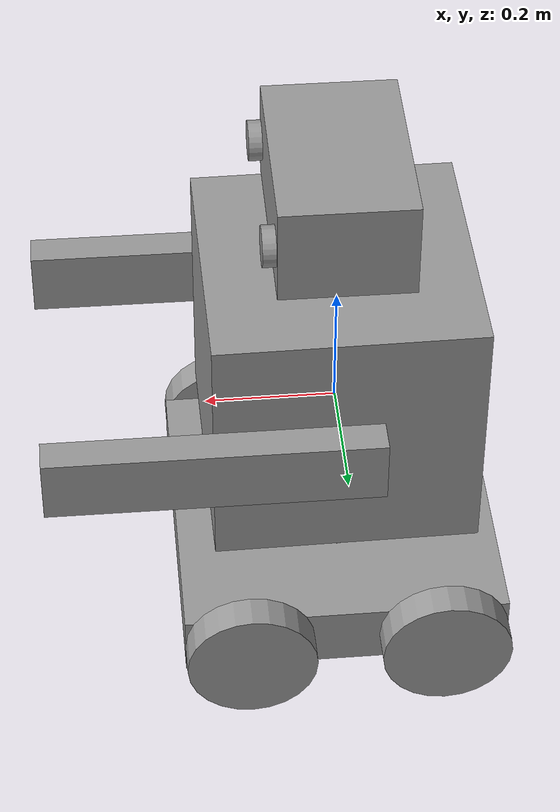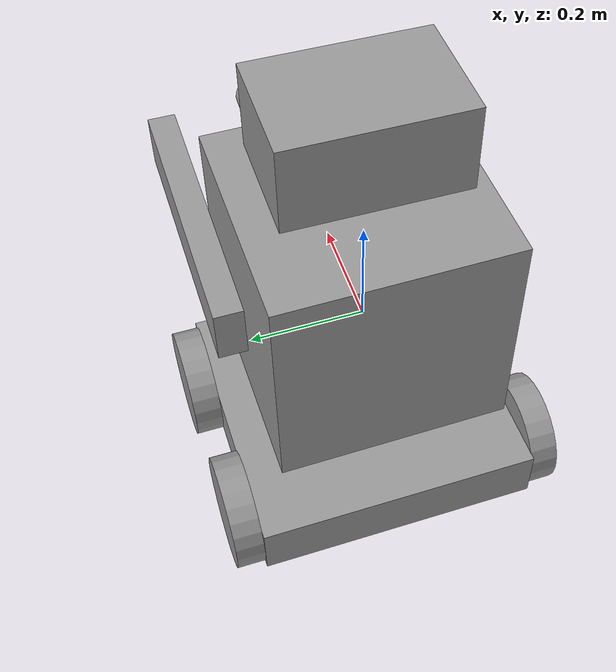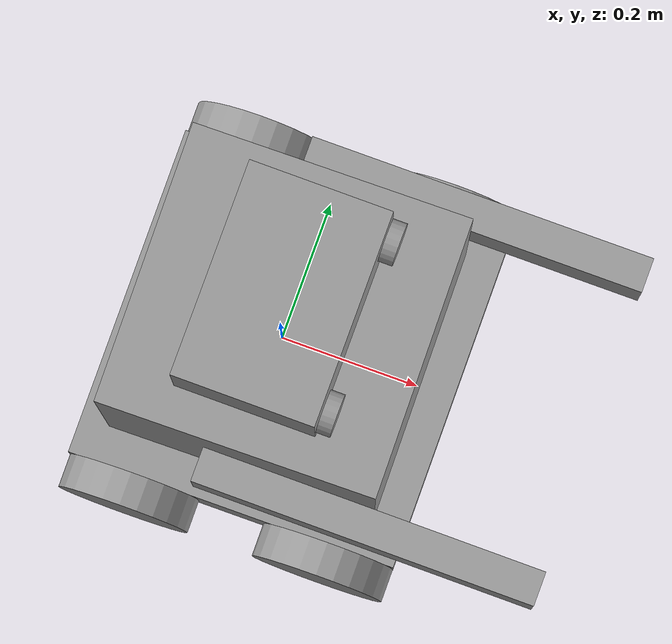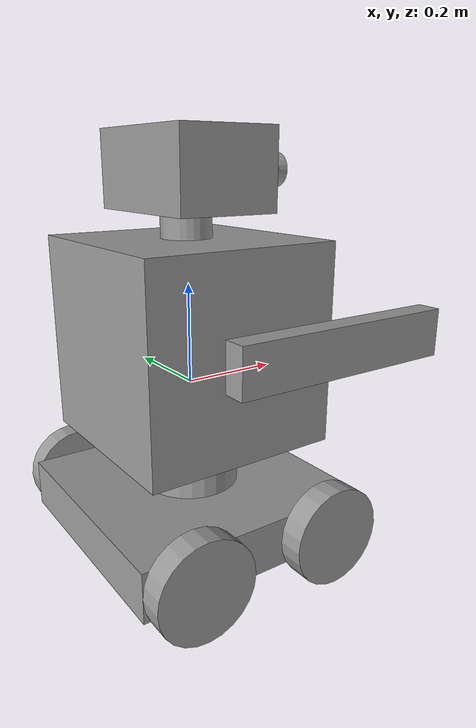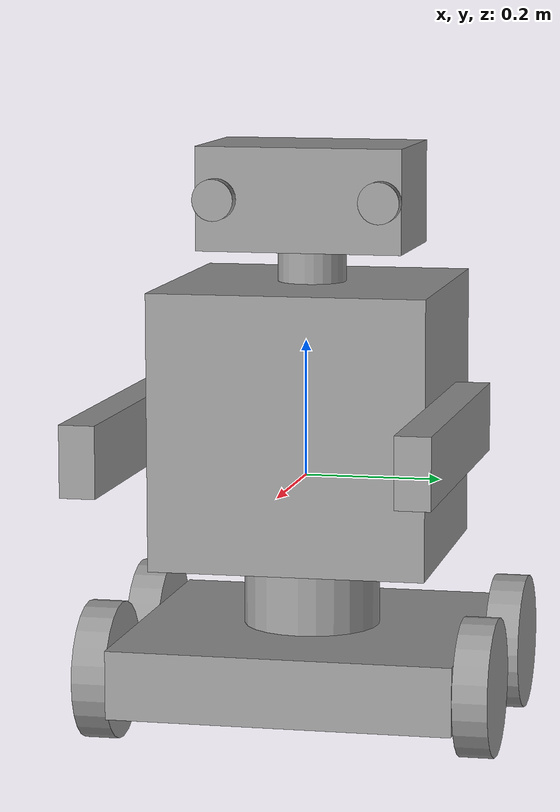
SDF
<?xml version='1.0'?>
<sdf version='1.6'>
  <model name='static_robot'>
    <link name='link_0'>
      <inertial>
        <mass>1</mass>
        <inertia>
          <ixx>0.166667</ixx>
          <ixy>0</ixy>
          <ixz>0</ixz>
          <iyy>0.166667</iyy>
          <iyz>0</iyz>
          <izz>0.166667</izz>
        </inertia>
        <pose frame=''>0 0 0 0 -0 0</pose>
      </inertial>
      <pose frame=''>0.002857 0.01 -0.27 0 -0 0</pose>
      <gravity>1</gravity>
      <self_collide>0</self_collide>
      <kinematic>0</kinematic>
      <enable_wind>0</enable_wind>
      <visual name='visual'>
        <pose frame=''>0 0 0 0 -0 0</pose>
        <geometry>
          <box>
            <size>0.5 0.5 0.1</size>
          </box>
        </geometry>
        <material>
          <lighting>1</lighting>
          <script>
            <uri>file://media/materials/scripts/gazebo.material</uri>
            <name>Gazebo/Grey</name>
          </script>
          <shader type='pixel'>
            <normal_map>__default__</normal_map>
          </shader>
          <ambient>0.3 0.3 0.3 1</ambient>
          <diffuse>0.7 0.7 0.7 1</diffuse>
          <specular>0.01 0.01 0.01 1</specular>
          <emissive>0 0 0 1</emissive>
        </material>
        <transparency>0</transparency>
        <cast_shadows>1</cast_shadows>
      </visual>
      <collision name='collision'>
        <laser_retro>0</laser_retro>
        <max_contacts>10</max_contacts>
        <pose frame=''>0 0 0 0 -0 0</pose>
        <geometry>
          <box>
            <size>0.5 0.5 0.1</size>
          </box>
        </geometry>
        <surface>
          <friction>
            <ode>
              <mu>1</mu>
              <mu2>1</mu2>
              <fdir1>0 0 0</fdir1>
              <slip1>0</slip1>
              <slip2>0</slip2>
            </ode>
            <torsional>
              <coefficient>1</coefficient>
              <patch_radius>0</patch_radius>
              <surface_radius>0</surface_radius>
              <use_patch_radius>1</use_patch_radius>
              <ode>
                <slip>0</slip>
              </ode>
            </torsional>
          </friction>
          <bounce>
            <restitution_coefficient>0</restitution_coefficient>
            <threshold>1e+06</threshold>
          </bounce>
          <contact>
            <collide_without_contact>0</collide_without_contact>
            <collide_without_contact_bitmask>1</collide_without_contact_bitmask>
            <collide_bitmask>1</collide_bitmask>
            <ode>
              <soft_cfm>0</soft_cfm>
              <soft_erp>0.2</soft_erp>
              <kp>1e+13</kp>
              <kd>1</kd>
              <max_vel>0.01</max_vel>
              <min_depth>0</min_depth>
            </ode>
            <bullet>
              <split_impulse>1</split_impulse>
              <split_impulse_penetration_threshold>-0.01</split_impulse_penetration_threshold>
              <soft_cfm>0</soft_cfm>
              <soft_erp>0.2</soft_erp>
              <kp>1e+13</kp>
              <kd>1</kd>
            </bullet>
          </contact>
        </surface>
      </collision>
    </link>
    <link name='link_0_0'>
      <inertial>
        <mass>1</mass>
        <inertia>
          <ixx>0.166667</ixx>
          <ixy>0</ixy>
          <ixz>0</ixz>
          <iyy>0.166667</iyy>
          <iyz>0</iyz>
          <izz>0.166667</izz>
        </inertia>
        <pose frame=''>0 0 0 0 -0 0</pose>
      </inertial>
      <pose frame=''>0.002855 0.009847 0.087784 0.000603 -1.2e-05 0.008466</pose>
      <gravity>1</gravity>
      <self_collide>0</self_collide>
      <kinematic>0</kinematic>
      <enable_wind>0</enable_wind>
      <visual name='visual'>
        <pose frame=''>0 0 0 0 -0 0</pose>
        <geometry>
          <box>
            <size>0.4 0.4 0.4</size>
          </box>
        </geometry>
        <material>
          <lighting>1</lighting>
          <script>
            <uri>file://media/materials/scripts/gazebo.material</uri>
            <name>Gazebo/Grey</name>
          </script>
          <shader type='pixel'>
            <normal_map>__default__</normal_map>
          </shader>
          <ambient>0.3 0.3 0.3 1</ambient>
          <diffuse>0.7 0.7 0.7 1</diffuse>
          <specular>0.01 0.01 0.01 1</specular>
          <emissive>0 0 0 1</emissive>
        </material>
        <transparency>0</transparency>
        <cast_shadows>1</cast_shadows>
      </visual>
      <collision name='collision'>
        <laser_retro>0</laser_retro>
        <max_contacts>10</max_contacts>
        <pose frame=''>0 0 0 0 -0 0</pose>
        <geometry>
          <box>
            <size>0.4 0.4 0.4</size>
          </box>
        </geometry>
        <surface>
          <friction>
            <ode>
              <mu>1</mu>
              <mu2>1</mu2>
              <fdir1>0 0 0</fdir1>
              <slip1>0</slip1>
              <slip2>0</slip2>
            </ode>
            <torsional>
              <coefficient>1</coefficient>
              <patch_radius>0</patch_radius>
              <surface_radius>0</surface_radius>
              <use_patch_radius>1</use_patch_radius>
              <ode>
                <slip>0</slip>
              </ode>
            </torsional>
          </friction>
          <bounce>
            <restitution_coefficient>0</restitution_coefficient>
            <threshold>1e+06</threshold>
          </bounce>
          <contact>
            <collide_without_contact>0</collide_without_contact>
            <collide_without_contact_bitmask>1</collide_without_contact_bitmask>
            <collide_bitmask>1</collide_bitmask>
            <ode>
              <soft_cfm>0</soft_cfm>
              <soft_erp>0.2</soft_erp>
              <kp>1e+13</kp>
              <kd>1</kd>
              <max_vel>0.01</max_vel>
              <min_depth>0</min_depth>
            </ode>
            <bullet>
              <split_impulse>1</split_impulse>
              <split_impulse_penetration_threshold>-0.01</split_impulse_penetration_threshold>
              <soft_cfm>0</soft_cfm>
              <soft_erp>0.2</soft_erp>
              <kp>1e+13</kp>
              <kd>1</kd>
            </bullet>
          </contact>
        </surface>
      </collision>
    </link>
    <link name='link_0_1_clone'>
      <inertial>
        <mass>1</mass>
        <inertia>
          <ixx>0.166667</ixx>
          <ixy>0</ixy>
          <ixz>0</ixz>
          <iyy>0.166667</iyy>
          <iyz>0</iyz>
          <izz>0.166667</izz>
        </inertia>
        <pose frame=''>0 0 0 0 -0 0</pose>
      </inertial>
      <pose frame=''>0.002853 0.009846 0.412906 4e-06 -1.2e-05 -0.006466</pose>
      <gravity>1</gravity>
      <self_collide>0</self_collide>
      <kinematic>0</kinematic>
      <enable_wind>0</enable_wind>
      <visual name='visual_0'>
        <pose frame=''>0 0 0 0 -0 0</pose>
        <geometry>
          <box>
            <size>0.2 0.3 0.15</size>
          </box>
        </geometry>
        <material>
          <lighting>1</lighting>
          <script>
            <uri>file://media/materials/scripts/gazebo.material</uri>
            <name>Gazebo/Grey</name>
          </script>
          <shader type='pixel'>
            <normal_map>__default__</normal_map>
          </shader>
          <ambient>0.3 0.3 0.3 1</ambient>
          <diffuse>0.7 0.7 0.7 1</diffuse>
          <specular>0.01 0.01 0.01 1</specular>
          <emissive>0 0 0 1</emissive>
        </material>
        <transparency>0</transparency>
        <cast_shadows>1</cast_shadows>
      </visual>
      <collision name='collision'>
        <laser_retro>0</laser_retro>
        <max_contacts>10</max_contacts>
        <pose frame=''>0 0 0 0 -0 0</pose>
        <geometry>
          <box>
            <size>0.2 0.3 0.15</size>
          </box>
        </geometry>
        <surface>
          <friction>
            <ode>
              <mu>1</mu>
              <mu2>1</mu2>
              <fdir1>0 0 0</fdir1>
              <slip1>0</slip1>
              <slip2>0</slip2>
            </ode>
            <torsional>
              <coefficient>1</coefficient>
              <patch_radius>0</patch_radius>
              <surface_radius>0</surface_radius>
              <use_patch_radius>1</use_patch_radius>
              <ode>
                <slip>0</slip>
              </ode>
            </torsional>
          </friction>
          <bounce>
            <restitution_coefficient>0</restitution_coefficient>
            <threshold>1e+06</threshold>
          </bounce>
          <contact>
            <collide_without_contact>0</collide_without_contact>
            <collide_without_contact_bitmask>1</collide_without_contact_bitmask>
            <collide_bitmask>1</collide_bitmask>
            <ode>
              <soft_cfm>0</soft_cfm>
              <soft_erp>0.2</soft_erp>
              <kp>1e+13</kp>
              <kd>1</kd>
              <max_vel>0.01</max_vel>
              <min_depth>0</min_depth>
            </ode>
            <bullet>
              <split_impulse>1</split_impulse>
              <split_impulse_penetration_threshold>-0.01</split_impulse_penetration_threshold>
              <soft_cfm>0</soft_cfm>
              <soft_erp>0.2</soft_erp>
              <kp>1e+13</kp>
              <kd>1</kd>
            </bullet>
          </contact>
        </surface>
      </collision>
    </link>
    <link name='link_1_clone'>
      <inertial>
        <mass>1</mass>
        <inertia>
          <ixx>0.145833</ixx>
          <ixy>0</ixy>
          <ixz>0</ixz>
          <iyy>0.145833</iyy>
          <iyz>0</iyz>
          <izz>0.125</izz>
        </inertia>
        <pose frame=''>0 0 0 0 -0 0</pose>
      </inertial>
      <pose frame=''>-0.147143 0.28508 -0.27004 0 -0 0</pose>
      <gravity>1</gravity>
      <self_collide>0</self_collide>
      <kinematic>0</kinematic>
      <enable_wind>0</enable_wind>
      <visual name='visual'>
        <pose frame=''>0 0 0 1.57 -0 0</pose>
        <geometry>
          <cylinder>
            <radius>0.1</radius>
            <length>0.05</length>
          </cylinder>
        </geometry>
        <material>
          <lighting>1</lighting>
          <script>
            <uri>file://media/materials/scripts/gazebo.material</uri>
            <name>Gazebo/Grey</name>
          </script>
          <shader type='pixel'>
            <normal_map>__default__</normal_map>
          </shader>
          <ambient>0.3 0.3 0.3 1</ambient>
          <diffuse>0.7 0.7 0.7 1</diffuse>
          <specular>0.01 0.01 0.01 1</specular>
          <emissive>0 0 0 1</emissive>
        </material>
        <transparency>0</transparency>
        <cast_shadows>1</cast_shadows>
      </visual>
      <collision name='collision'>
        <laser_retro>0</laser_retro>
        <max_contacts>10</max_contacts>
        <pose frame=''>0 0 0 1.57 -0 0</pose>
        <geometry>
          <cylinder>
            <radius>0.1</radius>
            <length>0.05</length>
          </cylinder>
        </geometry>
        <surface>
          <friction>
            <ode>
              <mu>1</mu>
              <mu2>1</mu2>
              <fdir1>0 0 0</fdir1>
              <slip1>0</slip1>
              <slip2>0</slip2>
            </ode>
            <torsional>
              <coefficient>1</coefficient>
              <patch_radius>0</patch_radius>
              <surface_radius>0</surface_radius>
              <use_patch_radius>1</use_patch_radius>
              <ode>
                <slip>0</slip>
              </ode>
            </torsional>
          </friction>
          <bounce>
            <restitution_coefficient>0</restitution_coefficient>
            <threshold>1e+06</threshold>
          </bounce>
          <contact>
            <collide_without_contact>0</collide_without_contact>
            <collide_without_contact_bitmask>1</collide_without_contact_bitmask>
            <collide_bitmask>1</collide_bitmask>
            <ode>
              <soft_cfm>0</soft_cfm>
              <soft_erp>0.2</soft_erp>
              <kp>1e+13</kp>
              <kd>1</kd>
              <max_vel>0.01</max_vel>
              <min_depth>0</min_depth>
            </ode>
            <bullet>
              <split_impulse>1</split_impulse>
              <split_impulse_penetration_threshold>-0.01</split_impulse_penetration_threshold>
              <soft_cfm>0</soft_cfm>
              <soft_erp>0.2</soft_erp>
              <kp>1e+13</kp>
              <kd>1</kd>
            </bullet>
          </contact>
        </surface>
      </collision>
    </link>
    <link name='link_1_clone_clone_0'>
      <inertial>
        <mass>1</mass>
        <inertia>
          <ixx>0.145833</ixx>
          <ixy>0</ixy>
          <ixz>0</ixz>
          <iyy>0.145833</iyy>
          <iyz>0</iyz>
          <izz>0.125</izz>
        </inertia>
        <pose frame=''>0 0 0 0 -0 0</pose>
      </inertial>
      <pose frame=''>0.152857 -0.26508 -0.27004 0 -0 0</pose>
      <gravity>1</gravity>
      <self_collide>0</self_collide>
      <kinematic>0</kinematic>
      <enable_wind>0</enable_wind>
      <visual name='visual'>
        <pose frame=''>0 0 0 1.57 -0 0</pose>
        <geometry>
          <cylinder>
            <radius>0.1</radius>
            <length>0.05</length>
          </cylinder>
        </geometry>
        <material>
          <lighting>1</lighting>
          <script>
            <uri>file://media/materials/scripts/gazebo.material</uri>
            <name>Gazebo/Grey</name>
          </script>
          <shader type='pixel'>
            <normal_map>__default__</normal_map>
          </shader>
          <ambient>0.3 0.3 0.3 1</ambient>
          <diffuse>0.7 0.7 0.7 1</diffuse>
          <specular>0.01 0.01 0.01 1</specular>
          <emissive>0 0 0 1</emissive>
        </material>
        <transparency>0</transparency>
        <cast_shadows>1</cast_shadows>
      </visual>
      <collision name='collision'>
        <laser_retro>0</laser_retro>
        <max_contacts>10</max_contacts>
        <pose frame=''>0 0 0 1.57 -0 0</pose>
        <geometry>
          <cylinder>
            <radius>0.1</radius>
            <length>0.05</length>
          </cylinder>
        </geometry>
        <surface>
          <friction>
            <ode>
              <mu>1</mu>
              <mu2>1</mu2>
              <fdir1>0 0 0</fdir1>
              <slip1>0</slip1>
              <slip2>0</slip2>
            </ode>
            <torsional>
              <coefficient>1</coefficient>
              <patch_radius>0</patch_radius>
              <surface_radius>0</surface_radius>
              <use_patch_radius>1</use_patch_radius>
              <ode>
                <slip>0</slip>
              </ode>
            </torsional>
          </friction>
          <bounce>
            <restitution_coefficient>0</restitution_coefficient>
            <threshold>1e+06</threshold>
          </bounce>
          <contact>
            <collide_without_contact>0</collide_without_contact>
            <collide_without_contact_bitmask>1</collide_without_contact_bitmask>
            <collide_bitmask>1</collide_bitmask>
            <ode>
              <soft_cfm>0</soft_cfm>
              <soft_erp>0.2</soft_erp>
              <kp>1e+13</kp>
              <kd>1</kd>
              <max_vel>0.01</max_vel>
              <min_depth>0</min_depth>
            </ode>
            <bullet>
              <split_impulse>1</split_impulse>
              <split_impulse_penetration_threshold>-0.01</split_impulse_penetration_threshold>
              <soft_cfm>0</soft_cfm>
              <soft_erp>0.2</soft_erp>
              <kp>1e+13</kp>
              <kd>1</kd>
            </bullet>
          </contact>
        </surface>
      </collision>
    </link>
    <link name='link_1_clone_clone_1'>
      <inertial>
        <mass>1</mass>
        <inertia>
          <ixx>0.145833</ixx>
          <ixy>0</ixy>
          <ixz>0</ixz>
          <iyy>0.145833</iyy>
          <iyz>0</iyz>
          <izz>0.125</izz>
        </inertia>
        <pose frame=''>0 0 0 0 -0 0</pose>
      </inertial>
      <pose frame=''>-0.147143 -0.26508 -0.27004 0 -0 0</pose>
      <gravity>1</gravity>
      <self_collide>0</self_collide>
      <kinematic>0</kinematic>
      <enable_wind>0</enable_wind>
      <visual name='visual'>
        <pose frame=''>0 0 0 1.57 -0 0</pose>
        <geometry>
          <cylinder>
            <radius>0.1</radius>
            <length>0.05</length>
          </cylinder>
        </geometry>
        <material>
          <lighting>1</lighting>
          <script>
            <uri>file://media/materials/scripts/gazebo.material</uri>
            <name>Gazebo/Grey</name>
          </script>
          <shader type='pixel'>
            <normal_map>__default__</normal_map>
          </shader>
          <ambient>0.3 0.3 0.3 1</ambient>
          <diffuse>0.7 0.7 0.7 1</diffuse>
          <specular>0.01 0.01 0.01 1</specular>
          <emissive>0 0 0 1</emissive>
        </material>
        <transparency>0</transparency>
        <cast_shadows>1</cast_shadows>
      </visual>
      <collision name='collision'>
        <laser_retro>0</laser_retro>
        <max_contacts>10</max_contacts>
        <pose frame=''>0 0 0 1.57 -0 0</pose>
        <geometry>
          <cylinder>
            <radius>0.1</radius>
            <length>0.05</length>
          </cylinder>
        </geometry>
        <surface>
          <friction>
            <ode>
              <mu>1</mu>
              <mu2>1</mu2>
              <fdir1>0 0 0</fdir1>
              <slip1>0</slip1>
              <slip2>0</slip2>
            </ode>
            <torsional>
              <coefficient>1</coefficient>
              <patch_radius>0</patch_radius>
              <surface_radius>0</surface_radius>
              <use_patch_radius>1</use_patch_radius>
              <ode>
                <slip>0</slip>
              </ode>
            </torsional>
          </friction>
          <bounce>
            <restitution_coefficient>0</restitution_coefficient>
            <threshold>1e+06</threshold>
          </bounce>
          <contact>
            <collide_without_contact>0</collide_without_contact>
            <collide_without_contact_bitmask>1</collide_without_contact_bitmask>
            <collide_bitmask>1</collide_bitmask>
            <ode>
              <soft_cfm>0</soft_cfm>
              <soft_erp>0.2</soft_erp>
              <kp>1e+13</kp>
              <kd>1</kd>
              <max_vel>0.01</max_vel>
              <min_depth>0</min_depth>
            </ode>
            <bullet>
              <split_impulse>1</split_impulse>
              <split_impulse_penetration_threshold>-0.01</split_impulse_penetration_threshold>
              <soft_cfm>0</soft_cfm>
              <soft_erp>0.2</soft_erp>
              <kp>1e+13</kp>
              <kd>1</kd>
            </bullet>
          </contact>
        </surface>
      </collision>
    </link>
    <link name='link_1_clone_clone_2'>
      <inertial>
        <mass>1</mass>
        <inertia>
          <ixx>0.145833</ixx>
          <ixy>0</ixy>
          <ixz>0</ixz>
          <iyy>0.145833</iyy>
          <iyz>0</iyz>
          <izz>0.125</izz>
        </inertia>
        <pose frame=''>0 0 0 0 -0 0</pose>
      </inertial>
      <pose frame=''>0.152857 0.28508 -0.27004 0 -0 0</pose>
      <gravity>1</gravity>
      <self_collide>0</self_collide>
      <kinematic>0</kinematic>
      <enable_wind>0</enable_wind>
      <visual name='visual'>
        <pose frame=''>0 0 0 1.57 -0 0</pose>
        <geometry>
          <cylinder>
            <radius>0.1</radius>
            <length>0.05</length>
          </cylinder>
        </geometry>
        <material>
          <lighting>1</lighting>
          <script>
            <uri>file://media/materials/scripts/gazebo.material</uri>
            <name>Gazebo/Grey</name>
          </script>
          <shader type='pixel'>
            <normal_map>__default__</normal_map>
          </shader>
          <ambient>0.3 0.3 0.3 1</ambient>
          <diffuse>0.7 0.7 0.7 1</diffuse>
          <specular>0.01 0.01 0.01 1</specular>
          <emissive>0 0 0 1</emissive>
        </material>
        <transparency>0</transparency>
        <cast_shadows>1</cast_shadows>
      </visual>
      <collision name='collision'>
        <laser_retro>0</laser_retro>
        <max_contacts>10</max_contacts>
        <pose frame=''>0 0 0 1.57 -0 0</pose>
        <geometry>
          <cylinder>
            <radius>0.1</radius>
            <length>0.05</length>
          </cylinder>
        </geometry>
        <surface>
          <friction>
            <ode>
              <mu>1</mu>
              <mu2>1</mu2>
              <fdir1>0 0 0</fdir1>
              <slip1>0</slip1>
              <slip2>0</slip2>
            </ode>
            <torsional>
              <coefficient>1</coefficient>
              <patch_radius>0</patch_radius>
              <surface_radius>0</surface_radius>
              <use_patch_radius>1</use_patch_radius>
              <ode>
                <slip>0</slip>
              </ode>
            </torsional>
          </friction>
          <bounce>
            <restitution_coefficient>0</restitution_coefficient>
            <threshold>1e+06</threshold>
          </bounce>
          <contact>
            <collide_without_contact>0</collide_without_contact>
            <collide_without_contact_bitmask>1</collide_without_contact_bitmask>
            <collide_bitmask>1</collide_bitmask>
            <ode>
              <soft_cfm>0</soft_cfm>
              <soft_erp>0.2</soft_erp>
              <kp>1e+13</kp>
              <kd>1</kd>
              <max_vel>0.01</max_vel>
              <min_depth>0</min_depth>
            </ode>
            <bullet>
              <split_impulse>1</split_impulse>
              <split_impulse_penetration_threshold>-0.01</split_impulse_penetration_threshold>
              <soft_cfm>0</soft_cfm>
              <soft_erp>0.2</soft_erp>
              <kp>1e+13</kp>
              <kd>1</kd>
            </bullet>
          </contact>
        </surface>
      </collision>
    </link>
    <link name='link_2_clone_clone_0_clone'>
      <inertial>
        <mass>1</mass>
        <inertia>
          <ixx>0.166667</ixx>
          <ixy>0</ixy>
          <ixz>0</ixz>
          <iyy>0.166667</iyy>
          <iyz>0</iyz>
          <izz>0.166667</izz>
        </inertia>
        <pose frame=''>0 0 0 0 -0 0</pose>
      </inertial>
      <pose frame=''>0.200922 0.238963 0.087787 2e-06 -6e-06 -0.003233</pose>
      <gravity>1</gravity>
      <self_collide>0</self_collide>
      <kinematic>0</kinematic>
      <enable_wind>0</enable_wind>
      <visual name='visual'>
        <pose frame=''>0 0 0 0 1.57 0</pose>
        <geometry>
          <box>
            <size>0.1 0.05 0.5</size>
          </box>
        </geometry>
        <material>
          <lighting>1</lighting>
          <script>
            <uri>file://media/materials/scripts/gazebo.material</uri>
            <name>Gazebo/Grey</name>
          </script>
          <shader type='pixel'>
            <normal_map>__default__</normal_map>
          </shader>
          <ambient>0.3 0.3 0.3 1</ambient>
          <diffuse>0.7 0.7 0.7 1</diffuse>
          <specular>0.01 0.01 0.01 1</specular>
          <emissive>0 0 0 1</emissive>
        </material>
        <transparency>0</transparency>
        <cast_shadows>1</cast_shadows>
      </visual>
      <collision name='collision'>
        <laser_retro>0</laser_retro>
        <max_contacts>10</max_contacts>
        <pose frame=''>0 0 0 0 1.57 0</pose>
        <geometry>
          <box>
            <size>0.1 0.05 0.5</size>
          </box>
        </geometry>
        <surface>
          <friction>
            <ode>
              <mu>1</mu>
              <mu2>1</mu2>
              <fdir1>0 0 0</fdir1>
              <slip1>0</slip1>
              <slip2>0</slip2>
            </ode>
            <torsional>
              <coefficient>1</coefficient>
              <patch_radius>0</patch_radius>
              <surface_radius>0</surface_radius>
              <use_patch_radius>1</use_patch_radius>
              <ode>
                <slip>0</slip>
              </ode>
            </torsional>
          </friction>
          <bounce>
            <restitution_coefficient>0</restitution_coefficient>
            <threshold>1e+06</threshold>
          </bounce>
          <contact>
            <collide_without_contact>0</collide_without_contact>
            <collide_without_contact_bitmask>1</collide_without_contact_bitmask>
            <collide_bitmask>1</collide_bitmask>
            <ode>
              <soft_cfm>0</soft_cfm>
              <soft_erp>0.2</soft_erp>
              <kp>1e+13</kp>
              <kd>1</kd>
              <max_vel>0.01</max_vel>
              <min_depth>0</min_depth>
            </ode>
            <bullet>
              <split_impulse>1</split_impulse>
              <split_impulse_penetration_threshold>-0.01</split_impulse_penetration_threshold>
              <soft_cfm>0</soft_cfm>
              <soft_erp>0.2</soft_erp>
              <kp>1e+13</kp>
              <kd>1</kd>
            </bullet>
          </contact>
        </surface>
      </collision>
    </link>
    <link name='link_2_clone_clone_0_clone_clone'>
      <inertial>
        <mass>1</mass>
        <inertia>
          <ixx>0.166667</ixx>
          <ixy>0</ixy>
          <ixz>0</ixz>
          <iyy>0.166667</iyy>
          <iyz>0</iyz>
          <izz>0.166667</izz>
        </inertia>
        <pose frame=''>0 0 0 0 -0 0</pose>
      </inertial>
      <pose frame=''>0.204785 -0.21725 0.087785 4e-06 -1.2e-05 -0.006466</pose>
      <gravity>1</gravity>
      <self_collide>0</self_collide>
      <kinematic>0</kinematic>
      <enable_wind>0</enable_wind>
      <visual name='visual'>
        <pose frame=''>0 0 0 0 1.57 0</pose>
        <geometry>
          <box>
            <size>0.1 0.05 0.5</size>
          </box>
        </geometry>
        <material>
          <lighting>1</lighting>
          <script>
            <uri>file://media/materials/scripts/gazebo.material</uri>
            <name>Gazebo/Grey</name>
          </script>
          <shader type='pixel'>
            <normal_map>__default__</normal_map>
          </shader>
          <ambient>0.3 0.3 0.3 1</ambient>
          <diffuse>0.7 0.7 0.7 1</diffuse>
          <specular>0.01 0.01 0.01 1</specular>
          <emissive>0 0 0 1</emissive>
        </material>
        <transparency>0</transparency>
        <cast_shadows>1</cast_shadows>
      </visual>
      <collision name='collision'>
        <laser_retro>0</laser_retro>
        <max_contacts>10</max_contacts>
        <pose frame=''>0 0 0 0 1.57 0</pose>
        <geometry>
          <box>
            <size>0.1 0.05 0.5</size>
          </box>
        </geometry>
        <surface>
          <friction>
            <ode>
              <mu>1</mu>
              <mu2>1</mu2>
              <fdir1>0 0 0</fdir1>
              <slip1>0</slip1>
              <slip2>0</slip2>
            </ode>
            <torsional>
              <coefficient>1</coefficient>
              <patch_radius>0</patch_radius>
              <surface_radius>0</surface_radius>
              <use_patch_radius>1</use_patch_radius>
              <ode>
                <slip>0</slip>
              </ode>
            </torsional>
          </friction>
          <bounce>
            <restitution_coefficient>0</restitution_coefficient>
            <threshold>1e+06</threshold>
          </bounce>
          <contact>
            <collide_without_contact>0</collide_without_contact>
            <collide_without_contact_bitmask>1</collide_without_contact_bitmask>
            <collide_bitmask>1</collide_bitmask>
            <ode>
              <soft_cfm>0</soft_cfm>
              <soft_erp>0.2</soft_erp>
              <kp>1e+13</kp>
              <kd>1</kd>
              <max_vel>0.01</max_vel>
              <min_depth>0</min_depth>
            </ode>
            <bullet>
              <split_impulse>1</split_impulse>
              <split_impulse_penetration_threshold>-0.01</split_impulse_penetration_threshold>
              <soft_cfm>0</soft_cfm>
              <soft_erp>0.2</soft_erp>
              <kp>1e+13</kp>
              <kd>1</kd>
            </bullet>
          </contact>
        </surface>
      </collision>
    </link>
    <link name='link_3_clone'>
      <inertial>
        <mass>1</mass>
        <inertia>
          <ixx>0.145833</ixx>
          <ixy>0</ixy>
          <ixz>0</ixz>
          <iyy>0.145833</iyy>
          <iyz>0</iyz>
          <izz>0.125</izz>
        </inertia>
        <pose frame=''>0 0 2 0 -0 0</pose>
      </inertial>
      <pose frame=''>0.002857 0.01 -0.17 0 -0 0</pose>
      <gravity>1</gravity>
      <self_collide>0</self_collide>
      <kinematic>0</kinematic>
      <enable_wind>0</enable_wind>
      <visual name='visual'>
        <pose frame=''>0 0 0 0 -0 0</pose>
        <geometry>
          <cylinder>
            <radius>0.1</radius>
            <length>0.1</length>
          </cylinder>
        </geometry>
        <material>
          <lighting>1</lighting>
          <script>
            <uri>file://media/materials/scripts/gazebo.material</uri>
            <name>Gazebo/Grey</name>
          </script>
          <shader type='pixel'>
            <normal_map>__default__</normal_map>
          </shader>
          <ambient>0.3 0.3 0.3 1</ambient>
          <diffuse>0.7 0.7 0.7 1</diffuse>
          <specular>0.01 0.01 0.01 1</specular>
          <emissive>0 0 0 1</emissive>
        </material>
        <transparency>0</transparency>
        <cast_shadows>1</cast_shadows>
      </visual>
      <collision name='collision'>
        <laser_retro>0</laser_retro>
        <max_contacts>10</max_contacts>
        <pose frame=''>0 0 0 0 -0 0</pose>
        <geometry>
          <cylinder>
            <radius>0.1</radius>
            <length>0.1</length>
          </cylinder>
        </geometry>
        <surface>
          <friction>
            <ode>
              <mu>1</mu>
              <mu2>1</mu2>
              <fdir1>0 0 0</fdir1>
              <slip1>0</slip1>
              <slip2>0</slip2>
            </ode>
            <torsional>
              <coefficient>1</coefficient>
              <patch_radius>0</patch_radius>
              <surface_radius>0</surface_radius>
              <use_patch_radius>1</use_patch_radius>
              <ode>
                <slip>0</slip>
              </ode>
            </torsional>
          </friction>
          <bounce>
            <restitution_coefficient>0</restitution_coefficient>
            <threshold>1e+06</threshold>
          </bounce>
          <contact>
            <collide_without_contact>0</collide_without_contact>
            <collide_without_contact_bitmask>1</collide_without_contact_bitmask>
            <collide_bitmask>1</collide_bitmask>
            <ode>
              <soft_cfm>0</soft_cfm>
              <soft_erp>0.2</soft_erp>
              <kp>1e+13</kp>
              <kd>1</kd>
              <max_vel>0.01</max_vel>
              <min_depth>0</min_depth>
            </ode>
            <bullet>
              <split_impulse>1</split_impulse>
              <split_impulse_penetration_threshold>-0.01</split_impulse_penetration_threshold>
              <soft_cfm>0</soft_cfm>
              <soft_erp>0.2</soft_erp>
              <kp>1e+13</kp>
              <kd>1</kd>
            </bullet>
          </contact>
        </surface>
      </collision>
    </link>
    <link name='link_3_clone_clone'>
      <inertial>
        <mass>1</mass>
        <inertia>
          <ixx>0.145833</ixx>
          <ixy>0</ixy>
          <ixz>0</ixz>
          <iyy>0.145833</iyy>
          <iyz>0</iyz>
          <izz>0.125</izz>
        </inertia>
        <pose frame=''>0 0 2 0 -0 0</pose>
      </inertial>
      <pose frame=''>0.002854 0.009847 0.312905 2e-06 -6e-06 -0.003233</pose>
      <gravity>1</gravity>
      <self_collide>0</self_collide>
      <kinematic>0</kinematic>
      <enable_wind>0</enable_wind>
      <visual name='visual'>
        <pose frame=''>0 0 0 0 -0 0</pose>
        <geometry>
          <cylinder>
            <radius>0.05</radius>
            <length>0.05</length>
          </cylinder>
        </geometry>
        <material>
          <lighting>1</lighting>
          <script>
            <uri>file://media/materials/scripts/gazebo.material</uri>
            <name>Gazebo/Grey</name>
          </script>
          <shader type='pixel'>
            <normal_map>__default__</normal_map>
          </shader>
          <ambient>0.3 0.3 0.3 1</ambient>
          <diffuse>0.7 0.7 0.7 1</diffuse>
          <specular>0.01 0.01 0.01 1</specular>
          <emissive>0 0 0 1</emissive>
        </material>
        <transparency>0</transparency>
        <cast_shadows>1</cast_shadows>
      </visual>
      <collision name='collision'>
        <laser_retro>0</laser_retro>
        <max_contacts>10</max_contacts>
        <pose frame=''>0 0 0 0 -0 0</pose>
        <geometry>
          <cylinder>
            <radius>0.05</radius>
            <length>0.05</length>
          </cylinder>
        </geometry>
        <surface>
          <friction>
            <ode>
              <mu>1</mu>
              <mu2>1</mu2>
              <fdir1>0 0 0</fdir1>
              <slip1>0</slip1>
              <slip2>0</slip2>
            </ode>
            <torsional>
              <coefficient>1</coefficient>
              <patch_radius>0</patch_radius>
              <surface_radius>0</surface_radius>
              <use_patch_radius>1</use_patch_radius>
              <ode>
                <slip>0</slip>
              </ode>
            </torsional>
          </friction>
          <bounce>
            <restitution_coefficient>0</restitution_coefficient>
            <threshold>1e+06</threshold>
          </bounce>
          <contact>
            <collide_without_contact>0</collide_without_contact>
            <collide_without_contact_bitmask>1</collide_without_contact_bitmask>
            <collide_bitmask>1</collide_bitmask>
            <ode>
              <soft_cfm>0</soft_cfm>
              <soft_erp>0.2</soft_erp>
              <kp>1e+13</kp>
              <kd>1</kd>
              <max_vel>0.01</max_vel>
              <min_depth>0</min_depth>
            </ode>
            <bullet>
              <split_impulse>1</split_impulse>
              <split_impulse_penetration_threshold>-0.01</split_impulse_penetration_threshold>
              <soft_cfm>0</soft_cfm>
              <soft_erp>0.2</soft_erp>
              <kp>1e+13</kp>
              <kd>1</kd>
            </bullet>
          </contact>
        </surface>
      </collision>
    </link>
    <link name='link_3_clone_clone_clone'>
      <inertial>
        <mass>1</mass>
        <inertia>
          <ixx>0.145833</ixx>
          <ixy>0</ixy>
          <ixz>0</ixz>
          <iyy>0.145833</iyy>
          <iyz>0</iyz>
          <izz>0.125</izz>
        </inertia>
        <pose frame=''>0 0 2 0 -0 0</pose>
      </inertial>
      <pose frame=''>0.113069 -0.110801 0.412907 0 -1.2e-05 -0.006466</pose>
      <gravity>1</gravity>
      <self_collide>0</self_collide>
      <kinematic>0</kinematic>
      <enable_wind>0</enable_wind>
      <visual name='visual'>
        <pose frame=''>0 0 0 0 1.57 0</pose>
        <geometry>
          <cylinder>
            <radius>0.03</radius>
            <length>0.02</length>
          </cylinder>
        </geometry>
        <material>
          <lighting>1</lighting>
          <script>
            <uri>file://media/materials/scripts/gazebo.material</uri>
            <name>Gazebo/Grey</name>
          </script>
          <shader type='pixel'>
            <normal_map>__default__</normal_map>
          </shader>
          <ambient>0.3 0.3 0.3 1</ambient>
          <diffuse>0.7 0.7 0.7 1</diffuse>
          <specular>0.01 0.01 0.01 1</specular>
          <emissive>0 0 0 1</emissive>
        </material>
        <transparency>0</transparency>
        <cast_shadows>1</cast_shadows>
      </visual>
      <collision name='collision'>
        <laser_retro>0</laser_retro>
        <max_contacts>10</max_contacts>
        <pose frame=''>0 0 0 0 1.57 0</pose>
        <geometry>
          <cylinder>
            <radius>0.03</radius>
            <length>0.02</length>
          </cylinder>
        </geometry>
        <surface>
          <friction>
            <ode>
              <mu>1</mu>
              <mu2>1</mu2>
              <fdir1>0 0 0</fdir1>
              <slip1>0</slip1>
              <slip2>0</slip2>
            </ode>
            <torsional>
              <coefficient>1</coefficient>
              <patch_radius>0</patch_radius>
              <surface_radius>0</surface_radius>
              <use_patch_radius>1</use_patch_radius>
              <ode>
                <slip>0</slip>
              </ode>
            </torsional>
          </friction>
          <bounce>
            <restitution_coefficient>0</restitution_coefficient>
            <threshold>1e+06</threshold>
          </bounce>
          <contact>
            <collide_without_contact>0</collide_without_contact>
            <collide_without_contact_bitmask>1</collide_without_contact_bitmask>
            <collide_bitmask>1</collide_bitmask>
            <ode>
              <soft_cfm>0</soft_cfm>
              <soft_erp>0.2</soft_erp>
              <kp>1e+13</kp>
              <kd>1</kd>
              <max_vel>0.01</max_vel>
              <min_depth>0</min_depth>
            </ode>
            <bullet>
              <split_impulse>1</split_impulse>
              <split_impulse_penetration_threshold>-0.01</split_impulse_penetration_threshold>
              <soft_cfm>0</soft_cfm>
              <soft_erp>0.2</soft_erp>
              <kp>1e+13</kp>
              <kd>1</kd>
            </bullet>
          </contact>
        </surface>
      </collision>
    </link>
    <link name='link_3_clone_clone_clone_clone'>
      <inertial>
        <mass>1</mass>
        <inertia>
          <ixx>0.145833</ixx>
          <ixy>0</ixy>
          <ixz>0</ixz>
          <iyy>0.145833</iyy>
          <iyz>0</iyz>
          <izz>0.125</izz>
        </inertia>
        <pose frame=''>0 0 2 0 -0 0</pose>
      </inertial>
      <pose frame=''>0.113944 0.129746 0.412907 2e-06 -1.8e-05 -0.009699</pose>
      <gravity>1</gravity>
      <self_collide>0</self_collide>
      <kinematic>0</kinematic>
      <enable_wind>0</enable_wind>
      <visual name='visual'>
        <pose frame=''>0 0 0 0 1.57 0</pose>
        <geometry>
          <cylinder>
            <radius>0.03</radius>
            <length>0.02</length>
          </cylinder>
        </geometry>
        <material>
          <lighting>1</lighting>
          <script>
            <uri>file://media/materials/scripts/gazebo.material</uri>
            <name>Gazebo/Grey</name>
          </script>
          <shader type='pixel'>
            <normal_map>__default__</normal_map>
          </shader>
          <ambient>0.3 0.3 0.3 1</ambient>
          <diffuse>0.7 0.7 0.7 1</diffuse>
          <specular>0.01 0.01 0.01 1</specular>
          <emissive>0 0 0 1</emissive>
        </material>
        <transparency>0</transparency>
        <cast_shadows>1</cast_shadows>
      </visual>
      <collision name='collision'>
        <laser_retro>0</laser_retro>
        <max_contacts>10</max_contacts>
        <pose frame=''>0 0 0 0 1.57 0</pose>
        <geometry>
          <cylinder>
            <radius>0.03</radius>
            <length>0.02</length>
          </cylinder>
        </geometry>
        <surface>
          <friction>
            <ode>
              <mu>1</mu>
              <mu2>1</mu2>
              <fdir1>0 0 0</fdir1>
              <slip1>0</slip1>
              <slip2>0</slip2>
            </ode>
            <torsional>
              <coefficient>1</coefficient>
              <patch_radius>0</patch_radius>
              <surface_radius>0</surface_radius>
              <use_patch_radius>1</use_patch_radius>
              <ode>
                <slip>0</slip>
              </ode>
            </torsional>
          </friction>
          <bounce>
            <restitution_coefficient>0</restitution_coefficient>
            <threshold>1e+06</threshold>
          </bounce>
          <contact>
            <collide_without_contact>0</collide_without_contact>
            <collide_without_contact_bitmask>1</collide_without_contact_bitmask>
            <collide_bitmask>1</collide_bitmask>
            <ode>
              <soft_cfm>0</soft_cfm>
              <soft_erp>0.2</soft_erp>
              <kp>1e+13</kp>
              <kd>1</kd>
              <max_vel>0.01</max_vel>
              <min_depth>0</min_depth>
            </ode>
            <bullet>
              <split_impulse>1</split_impulse>
              <split_impulse_penetration_threshold>-0.01</split_impulse_penetration_threshold>
              <soft_cfm>0</soft_cfm>
              <soft_erp>0.2</soft_erp>
              <kp>1e+13</kp>
              <kd>1</kd>
            </bullet>
          </contact>
        </surface>
      </collision>
    </link>
    <joint name='link_0_0_JOINT_0' type='revolute'>
      <parent>link_0_0</parent>
      <child>link_2_clone_clone_0_clone_clone</child>
      <pose frame=''>-0.2 0 0 0 -0 0</pose>
      <axis>
        <xyz>0 1 0</xyz>
        <use_parent_model_frame>0</use_parent_model_frame>
        <limit>
          <lower>-1.79769e+308</lower>
          <upper>1.79769e+308</upper>
          <effort>-1</effort>
          <velocity>-1</velocity>
        </limit>
        <dynamics>
          <spring_reference>0</spring_reference>
          <spring_stiffness>0</spring_stiffness>
          <damping>0</damping>
          <friction>0</friction>
        </dynamics>
      </axis>
      <physics>
        <ode>
          <limit>
            <cfm>0</cfm>
            <erp>0.2</erp>
          </limit>
          <suspension>
            <cfm>0</cfm>
            <erp>0.2</erp>
          </suspension>
        </ode>
      </physics>
    </joint>
    <joint name='link_0_0_JOINT_1' type='revolute'>
      <parent>link_0_0</parent>
      <child>link_2_clone_clone_0_clone</child>
      <pose frame=''>-0.2 0 0 0 -0 0</pose>
      <axis>
        <xyz>0 -1 0</xyz>
        <use_parent_model_frame>0</use_parent_model_frame>
        <limit>
          <lower>-1.79769e+308</lower>
          <upper>1.79769e+308</upper>
          <effort>-1</effort>
          <velocity>-1</velocity>
        </limit>
        <dynamics>
          <spring_reference>0</spring_reference>
          <spring_stiffness>0</spring_stiffness>
          <damping>0</damping>
          <friction>0</friction>
        </dynamics>
      </axis>
      <physics>
        <ode>
          <limit>
            <cfm>0</cfm>
            <erp>0.2</erp>
          </limit>
          <suspension>
            <cfm>0</cfm>
            <erp>0.2</erp>
          </suspension>
        </ode>
      </physics>
    </joint>
    <joint name='link_0_0_JOINT_3' type='revolute'>
      <parent>link_0_0</parent>
      <child>link_3_clone_clone</child>
      <pose frame=''>0 0 0 0 -0 0</pose>
      <axis>
        <xyz>0 0 1</xyz>
        <use_parent_model_frame>0</use_parent_model_frame>
        <limit>
          <lower>-1.79769e+308</lower>
          <upper>1.79769e+308</upper>
          <effort>-1</effort>
          <velocity>-1</velocity>
        </limit>
        <dynamics>
          <spring_reference>0</spring_reference>
          <spring_stiffness>0</spring_stiffness>
          <damping>0</damping>
          <friction>0</friction>
        </dynamics>
      </axis>
      <physics>
        <ode>
          <limit>
            <cfm>0</cfm>
            <erp>0.2</erp>
          </limit>
          <suspension>
            <cfm>0</cfm>
            <erp>0.2</erp>
          </suspension>
        </ode>
      </physics>
    </joint>
    <joint name='link_0_1_clone_JOINT_6' type='fixed'>
      <parent>link_0_1_clone</parent>
      <child>link_3_clone_clone_clone</child>
      <pose frame=''>0 0 0 0 -0.01 0</pose>
      <physics>
        <ode>
          <limit>
            <cfm>0</cfm>
            <erp>0.2</erp>
          </limit>
          <suspension>
            <cfm>0</cfm>
            <erp>0.2</erp>
          </suspension>
        </ode>
      </physics>
    </joint>
    <joint name='link_0_1_clone_JOINT_7' type='fixed'>
      <parent>link_0_1_clone</parent>
      <child>link_3_clone_clone_clone_clone</child>
      <pose frame=''>0 0 0 0 -0 0</pose>
      <physics>
        <ode>
          <limit>
            <cfm>0</cfm>
            <erp>0.2</erp>
          </limit>
          <suspension>
            <cfm>0</cfm>
            <erp>0.2</erp>
          </suspension>
        </ode>
      </physics>
    </joint>
    <joint name='link_0_JOINT_0' type='revolute'>
      <parent>link_0</parent>
      <child>link_1_clone_clone_0</child>
      <pose frame=''>0 0 0 0 -0 0</pose>
      <axis>
        <xyz>0 1 0</xyz>
        <use_parent_model_frame>0</use_parent_model_frame>
        <limit>
          <lower>-1.79769e+308</lower>
          <upper>1.79769e+308</upper>
          <effort>-1</effort>
          <velocity>-1</velocity>
        </limit>
        <dynamics>
          <spring_reference>0</spring_reference>
          <spring_stiffness>0</spring_stiffness>
          <damping>0</damping>
          <friction>0</friction>
        </dynamics>
      </axis>
      <physics>
        <ode>
          <limit>
            <cfm>0</cfm>
            <erp>0.2</erp>
          </limit>
          <suspension>
            <cfm>0</cfm>
            <erp>0.2</erp>
          </suspension>
        </ode>
      </physics>
    </joint>
    <joint name='link_0_JOINT_1' type='revolute'>
      <parent>link_0</parent>
      <child>link_1_clone_clone_1</child>
      <pose frame=''>0 0 0 0 -0 0</pose>
      <axis>
        <xyz>0 1 0</xyz>
        <use_parent_model_frame>0</use_parent_model_frame>
        <limit>
          <lower>-1.79769e+308</lower>
          <upper>1.79769e+308</upper>
          <effort>-1</effort>
          <velocity>-1</velocity>
        </limit>
        <dynamics>
          <spring_reference>0</spring_reference>
          <spring_stiffness>0</spring_stiffness>
          <damping>0</damping>
          <friction>0</friction>
        </dynamics>
      </axis>
      <physics>
        <ode>
          <limit>
            <cfm>0</cfm>
            <erp>0.2</erp>
          </limit>
          <suspension>
            <cfm>0</cfm>
            <erp>0.2</erp>
          </suspension>
        </ode>
      </physics>
    </joint>
    <joint name='link_0_JOINT_2' type='revolute'>
      <parent>link_0</parent>
      <child>link_1_clone_clone_2</child>
      <pose frame=''>0 0 0 0 -0 0</pose>
      <axis>
        <xyz>-0 -1 -0</xyz>
        <use_parent_model_frame>0</use_parent_model_frame>
        <limit>
          <lower>-1.79769e+308</lower>
          <upper>1.79769e+308</upper>
          <effort>-1</effort>
          <velocity>-1</velocity>
        </limit>
        <dynamics>
          <spring_reference>0</spring_reference>
          <spring_stiffness>0</spring_stiffness>
          <damping>0</damping>
          <friction>0</friction>
        </dynamics>
      </axis>
      <physics>
        <ode>
          <limit>
            <cfm>0</cfm>
            <erp>0.2</erp>
          </limit>
          <suspension>
            <cfm>0</cfm>
            <erp>0.2</erp>
          </suspension>
        </ode>
      </physics>
    </joint>
    <joint name='link_0_JOINT_3' type='revolute'>
      <parent>link_0</parent>
      <child>link_1_clone</child>
      <pose frame=''>0 0 0 0 -0 0</pose>
      <axis>
        <xyz>-0 -1 -0</xyz>
        <use_parent_model_frame>0</use_parent_model_frame>
        <limit>
          <lower>-1.79769e+308</lower>
          <upper>1.79769e+308</upper>
          <effort>-1</effort>
          <velocity>-1</velocity>
        </limit>
        <dynamics>
          <spring_reference>0</spring_reference>
          <spring_stiffness>0</spring_stiffness>
          <damping>0</damping>
          <friction>0</friction>
        </dynamics>
      </axis>
      <physics>
        <ode>
          <limit>
            <cfm>0</cfm>
            <erp>0.2</erp>
          </limit>
          <suspension>
            <cfm>0</cfm>
            <erp>0.2</erp>
          </suspension>
        </ode>
      </physics>
    </joint>
    <joint name='link_0_JOINT_5' type='revolute'>
      <parent>link_0</parent>
      <child>link_3_clone</child>
      <pose frame=''>0 0 -0.1 0 -0 0</pose>
      <axis>
        <xyz>0 0 1</xyz>
        <use_parent_model_frame>0</use_parent_model_frame>
        <limit>
          <lower>-1.79769e+308</lower>
          <upper>1.79769e+308</upper>
          <effort>-1</effort>
          <velocity>-1</velocity>
        </limit>
        <dynamics>
          <spring_reference>0</spring_reference>
          <spring_stiffness>0</spring_stiffness>
          <damping>0</damping>
          <friction>0</friction>
        </dynamics>
      </axis>
      <physics>
        <ode>
          <limit>
            <cfm>0</cfm>
            <erp>0.2</erp>
          </limit>
          <suspension>
            <cfm>0</cfm>
            <erp>0.2</erp>
          </suspension>
        </ode>
      </physics>
    </joint>
    <joint name='link_3_clone_JOINT_4' type='revolute'>
      <parent>link_3_clone</parent>
      <child>link_0_0</child>
      <pose frame=''>0 0 0 0 -0 0</pose>
      <axis>
        <xyz>0 0 1</xyz>
        <use_parent_model_frame>0</use_parent_model_frame>
        <limit>
          <lower>-1.79769e+308</lower>
          <upper>1.79769e+308</upper>
          <effort>-1</effort>
          <velocity>-1</velocity>
        </limit>
        <dynamics>
          <spring_reference>0</spring_reference>
          <spring_stiffness>0</spring_stiffness>
          <damping>0</damping>
          <friction>0</friction>
        </dynamics>
      </axis>
      <physics>
        <ode>
          <limit>
            <cfm>0</cfm>
            <erp>0.2</erp>
          </limit>
          <suspension>
            <cfm>0</cfm>
            <erp>0.2</erp>
          </suspension>
        </ode>
      </physics>
    </joint>
    <joint name='link_3_clone_clone_JOINT_5' type='revolute'>
      <parent>link_3_clone_clone</parent>
      <child>link_0_1_clone</child>
      <pose frame=''>0 0 0 0 -0 0</pose>
      <axis>
        <xyz>0 0 1</xyz>
        <use_parent_model_frame>0</use_parent_model_frame>
        <limit>
          <lower>-1.79769e+308</lower>
          <upper>1.79769e+308</upper>
          <effort>-1</effort>
          <velocity>-1</velocity>
        </limit>
        <dynamics>
          <spring_reference>0</spring_reference>
          <spring_stiffness>0</spring_stiffness>
          <damping>0</damping>
          <friction>0</friction>
        </dynamics>
      </axis>
      <physics>
        <ode>
          <limit>
            <cfm>0</cfm>
            <erp>0.2</erp>
          </limit>
          <suspension>
            <cfm>0</cfm>
            <erp>0.2</erp>
          </suspension>
        </ode>
      </physics>
    </joint>
    <static>0</static>
    <allow_auto_disable>1</allow_auto_disable>
  </model>
</sdf>
